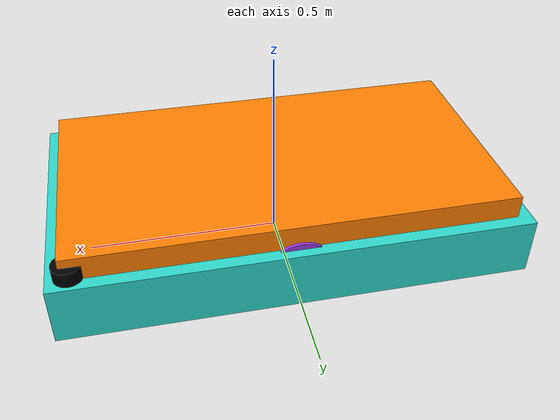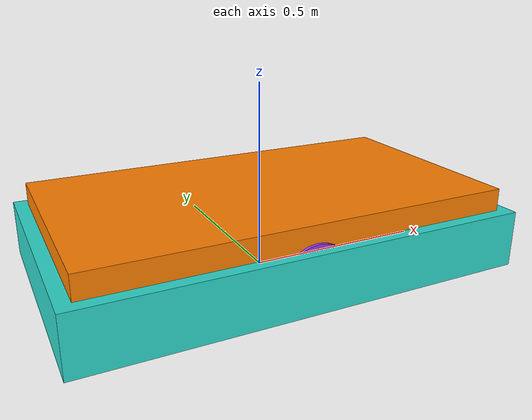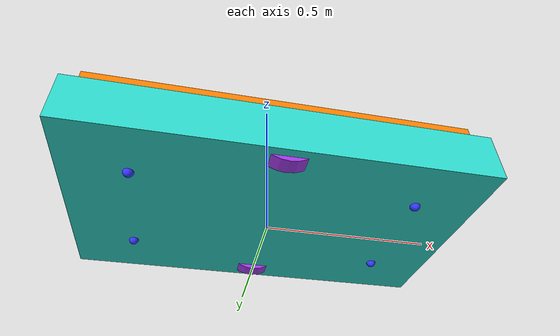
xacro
<?xml version="1.0"?>
<robot xmlns:xacro="http://www.ros.org/wiki/xacro" name="robot">

    <xacro:arg name="use_ros2_control" default="true"/>
    <xacro:arg name="sim_mode" default="true"/>

    <xacro:include filename="robot_core.xacro" />

    <xacro:if value="$(arg use_ros2_control)">
        <xacro:include filename="ros2_control.xacro" />
    </xacro:if>
    <xacro:unless value="$(arg use_ros2_control)">
        <xacro:include filename="gazebo_control.xacro" />
    </xacro:unless>

    <xacro:include filename="lidar.xacro" />

</robot>

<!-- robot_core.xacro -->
<robot xmlns:xacro="http://www.ros.org/wiki/xacro" >

    <xacro:include filename="inertial_macros.xacro"/>

    <material name="white">
        <color rgba="1 1 1 1"/>
    </material>

    <material name="orange">
        <color rgba="1 0.3 0.1 1"/>
    </material>

    <material name="blue">
        <color rgba="0.2 0.2 1 1"/>
    </material>

    <material name="black">
        <color rgba="0 0 0 1"/>
    </material>

    <material name="red">
        <color rgba="1 0 0 1"/>
    </material>

    <material name="green">
        <color rgba="0 1 0 1"/>
    </material>

    <material name="vibrantorange">
        <color rgba="1.0 0.5 0 1"/>
    </material>

    <material name="xanhlo">
        <color rgba="0.18 0.85 0.8 1"/>
    </material>

    <material name="xanhdaquang">
        <color rgba="0.4 0.91 0.22 1"/>
    </material>

    <material name="tim">
        <color rgba="0.62 0.22 0.9 1"/>
    </material>

    <!-- BASE FOOTPRINT -->

    <link name="base_footprint">

    </link>

    <!-- BASE LINK -->

    <joint name="base_joint" type="fixed">
        <parent link="base_footprint"/>
        <child link="base_link"/>
        <origin xyz="0 0 0.09" rpy="0 0 0"/>
    </joint>

    <link name="base_link">
        <visual>
            <origin xyz="0 0 0"/>
            <geometry>
                <box size="1.170 0.665 0.15"/>
            </geometry>
            <material name="xanhlo"/>
        </visual>
        <collision>
            <origin xyz="0 0 0"/>
            <geometry>
                <box size="1.170 0.665 0.15"/>
            </geometry>
        </collision>

        <xacro:inertial_box mass="180" x="1.17" y="0.665" z="0.15">
            <origin xyz="0 0 0" rpy="0 0 0"/>
        </xacro:inertial_box>
    </link>

    <gazebo reference="base_link">
        <material>Gazebo/Green</material>
    </gazebo>

     <!-- CHASSIS 1 LINK -->

    <joint name="chassis_1_joint" type="fixed">
        <parent link="base_link"/>
        <child link="chassis_1_link"/>
        <origin xyz="0 0 0.105" rpy="0 0 0"/>
    </joint>

    <link name="chassis_1_link">
        <visual>
            <origin xyz="0 0 0"/>
            <geometry>
                <box size="1.1 0.6 0.06"/>
            </geometry>
            <material name="vibrantorange"/>
        </visual>
        <collision>
            <origin xyz="0 0 0"/>
            <geometry>
                <box size="1.1 0.6 0.06"/>
            </geometry>
        </collision>

        <xacro:inertial_box mass="2" x="1.0" y="0.5" z="0.06">
            <origin xyz="0 0 0" rpy="0 0 0"/>
        </xacro:inertial_box>
    </link>

    <gazebo reference="chassis_1_link">
        <material>Gazebo/Orange</material>
    </gazebo>

    <!-- LEFT WHEEL LINK -->

    <joint name="left_wheel_joint" type="continuous">
        <parent link="base_link"/>
        <child link="left_wheel"/>
        <origin xyz="0 0.28515 0" rpy="-${pi/2} 0 0"/>
        <axis xyz="0 0 1"/>
    </joint>

    <link name="left_wheel">
        <visual>
            <origin xyz="0 0 0"/>
            <geometry>
                <cylinder radius="0.09" length="0.046"/>
            </geometry>
            <material name="tim"/>
        </visual>
        <collision>
            <origin xyz="0 0 0"/>
            <geometry>
            <sphere radius="0.09"/>
            </geometry>
        </collision>

        <xacro:inertial_cylinder mass = "1.5" length="0.046" radius="0.09">
            <origin xyz="0 0 0" rpy="0 0 0"/>
        </xacro:inertial_cylinder>
    </link>

    <gazebo reference="left_wheel">
        <material>Gazebo/Purple</material>
        <mu1 value="10.0"/>
        <mu2 value="10.0"/>
    </gazebo>

    <!-- RIGHT WHEEL LINK -->

    <joint name="right_wheel_joint" type="continuous">
        <parent link="base_link"/>
        <child link="right_wheel"/>
        <origin xyz="0 -0.28515 0" rpy="${pi/2} 0 0"/>
        <axis xyz="0 0 -1"/>
    </joint>

    <link name="right_wheel">
        <visual>
            <origin xyz="0 0 0"/>
            <geometry>
                <cylinder radius="0.09" length="0.046"/>
            </geometry>
            <material name="tim"/>
        </visual>
        <collision>
            <origin xyz="0 0 0"/>
            <geometry>
                <sphere radius="0.09"/>
            </geometry>
        </collision>

        <xacro:inertial_cylinder mass = "1.5" length="0.046" radius="0.09">
            <origin xyz="0 0 0" rpy="0 0 0"/>
        </xacro:inertial_cylinder>
    </link>

    <gazebo reference="right_wheel">
        <material>Gazebo/Purple</material>
        <mu1 value="10.0"/>
        <mu2 value="10.0"/>
    </gazebo>

    <!-- CASTER WHEEL RIGHT BEHIND LINK -->

    <joint name="caster_wheel_right_behind_joint" type="fixed">
        <parent link="base_link"/>
        <child link="caster_wheel_right_behind"/>
        <origin xyz="-0.4 -0.17 -0.0749" rpy="0 0 0"/>
    </joint>

    <link name="caster_wheel_right_behind">
        <visual>
            <origin xyz="0 0 0"/>
            <geometry>
                <sphere radius="0.015"/>
            </geometry>
            <material name="blue"/>
        </visual>
        <collision>
            <origin xyz="0 0 0"/>
            <geometry>
                <sphere radius="0.015"/>
            </geometry>
        </collision>

        <xacro:inertial_sphere mass="1" radius="0.015">
            <origin xyz="0 0 0" rpy="0 0 0"/>
        </xacro:inertial_sphere>
    </link>

    <gazebo reference="caster_wheel_right_behind">
        <material>Gazebo/Blue</material>
        <mu1 value="0"/>
        <mu2 value="0"/>
    </gazebo>

    <!-- CASTER WHEEL LEFT BEHIND LINK -->

    <joint name="caster_wheel_left_behind_joint" type="fixed">
        <parent link="base_link"/>
        <child link="caster_wheel_left_behind"/>
        <origin xyz="-0.4 0.17 -0.0749" rpy="0 0 0"/>
    </joint>

    <link name="caster_wheel_left_behind">
        <visual>
            <origin xyz="0 0 0"/>
            <geometry>
                <sphere radius="0.015"/>
            </geometry>
            <material name="blue"/>
        </visual>
        <collision>
            <origin xyz="0 0 0"/>
            <geometry>
                <sphere radius="0.015"/>
            </geometry>
        </collision>

        <xacro:inertial_sphere mass="1" radius="0.015">
            <origin xyz="0 0 0" rpy="0 0 0"/>
        </xacro:inertial_sphere>
    </link>

    <gazebo reference="caster_wheel_left_behind">
        <material>Gazebo/Blue</material>
        <mu1 value="0"/>
        <mu2 value="0"/>
    </gazebo>

    <!-- CASTER WHEEL RIGHT FRONT LINK -->

    <joint name="caster_wheel_right_front_joint" type="fixed">
        <parent link="base_link"/>
        <child link="caster_wheel_right_front"/>
        <origin xyz="0.4 0.17 -0.0749" rpy="0 0 0"/>
    </joint>

    <link name="caster_wheel_right_front">
        <visual>
            <origin xyz="0 0 0"/>
            <geometry>
                <sphere radius="0.015"/>
            </geometry>
            <material name="blue"/>
        </visual>
        <collision>
            <origin xyz="0 0 0"/>
            <geometry>
                <sphere radius="0.015"/>
            </geometry>
        </collision>

        <xacro:inertial_sphere mass="1" radius="0.015">
            <origin xyz="0 0 0" rpy="0 0 0"/>
        </xacro:inertial_sphere>
    </link>

    <gazebo reference="caster_wheel_right_front">
        <material>Gazebo/Blue</material>
        <mu1 value="0"/>
        <mu2 value="0"/>
    </gazebo>

    <!-- CASTER WHEEL LEFT FRONT LINK -->

    <joint name="caster_wheel_left_front_joint" type="fixed">
        <parent link="base_link"/>
        <child link="caster_wheel_left_front"/>
        <origin xyz="0.4 -0.17 -0.0749" rpy="0 0 0"/>
    </joint>

    <link name="caster_wheel_left_front">
        <visual>
            <origin xyz="0 0 0"/>
            <geometry>
                <sphere radius="0.015"/>
            </geometry>
            <material name="blue"/>
        </visual>
        <collision>
            <origin xyz="0 0 0"/>
            <geometry>
                <sphere radius="0.015"/>
            </geometry>
        </collision>

        <xacro:inertial_sphere mass="1" radius="0.015">
            <origin xyz="0 0 0" rpy="0 0 0"/>
        </xacro:inertial_sphere>
    </link>

    <gazebo reference="caster_wheel_left_front">
        <material>Gazebo/Blue</material>
        <mu1 value="0"/>
        <mu2 value="0"/>
    </gazebo>

    <joint name="imu_joint" type="fixed">
        <parent link="base_link"/>
        <child link="imu_link"/>
        <origin xyz="0.0 0.0 0.05" rpy="0 0 0"/>
    </joint>

    <link name="imu_link">
        <visual>
            <origin xyz="0 0 0"/>
            <geometry>
                <box size="0.03 0.03 0.01"/>
            </geometry>
            <material name="black"/>
        </visual>
        <collisopn>
            <origin xyz="0 0 0"/>
            <geometry>
                <box size="0.03 0.03 0.01"/>
            </geometry>
        </collisopn>

        <xacro:inertial_box mass="0.01" x="0.03" y="0.03" z="0.01">
            <origin xyz="0 0 0" rpy="0 0 0"/>
        </xacro:inertial_box>
    </link>

    <gazebo reference="imu_link">
        <gravity>true</gravity>
        <sensor name="imu_sensor" type="imu">
            <always_on>true</always_on>
            <update_rate>100</update_rate> <visualize>true</visualize>
            <topic>/imu/data</topic>
            <plugin filename="libgazebo_ros_imu_sensor.so" name="imu_plugin">
                <ros>
                    <remapping>~/out:=/imu/data</remapping>
                </ros>
                <bodyName>imu_link</bodyName>
                <updateRateHZ>100.0</updateRateHZ>
                <gaussianNoise>0.002</gaussianNoise> <xyzOffset>0 0 0</xyzOffset>
                <rpyOffset>0 0 0</rpyOffset>
                <frameName>imu_link</frameName>
                <initialOrientationAsReference>false</initialOrientationAsReference>
            </plugin>
            <pose>0 0 0 0 0 0</pose>
        </sensor>
        <material>Gazebo/Black</material>
    </gazebo>

</robot>

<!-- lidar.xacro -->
<robot xmlns:xacro="http://www.ros.org/wiki/xacro">

    <!-- LASER FRAME -->

    <joint name="laser_joint" type="fixed">
        <origin xyz="0.532 0.288 0.092" rpy="0 0 ${pi}" />
        <parent link="base_link" />
        <child link="laser_frame" />
        <axis xyz="0 0 0" />
    </joint>

    <link name="laser_frame">
        <visual>
            <origin xyz="0 0 0" rpy="0 0 0"/>
            <geometry>
                <cylinder radius="0.035" length="0.04"/>
            </geometry>
            <material name="black"/>
        </visual>
        <collision>
            <origin xyz="0 0 0" rpy="0 0 0" />
            <geometry>
                <cylinder radius="0.035" length="0.04"/>
            </geometry>
        </collision>

        <xacro:inertial_cylinder mass="0.1" length="0.04" radius="0.035">
            <origin xyz="0 0 0" rpy="0 0 0"/>
        </xacro:inertial_cylinder>

    </link>

    <gazebo reference="laser_frame">
        <material>Gazebo/Black</material>

        <sensor name="laser" type="ray">
            <pose> 0 0 0 0 0 0 </pose>
            <visualize>true</visualize>
            <update_rate>8</update_rate>
            <ray>
                <scan>
                    <horizontal>
                        <samples>360</samples>
                        <resolution>1</resolution>
                        <min_angle>-3.14</min_angle>
                        <max_angle>3.14</max_angle>
                    </horizontal>
                </scan>
                <range>
                    <min>0.15</min>
                    <max>12</max>
                    <resolution>0.01</resolution>
                </range>
            </ray>
            <plugin name="laser_controller" filename="libgazebo_ros_ray_sensor.so">
                <ros>
                    <argument>~/out:=scan</argument>
                </ros>
                <output_type>sensor_msgs/LaserScan</output_type>
                <frame_name>laser_frame</frame_name>
            </plugin>
        </sensor>
    </gazebo>

</robot>
